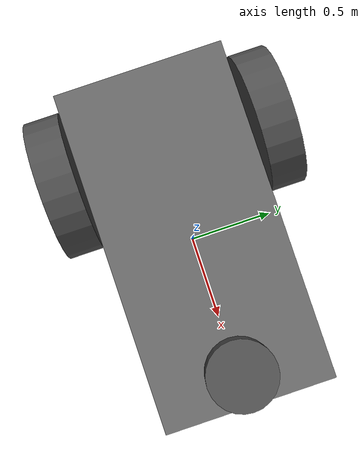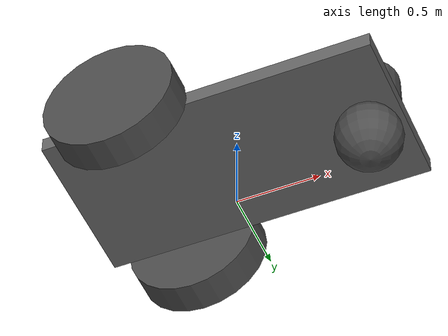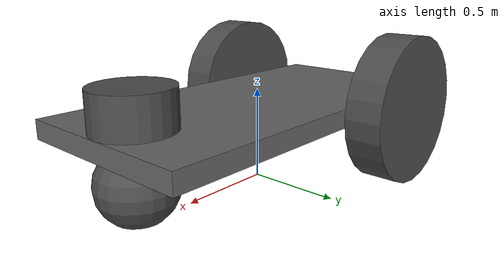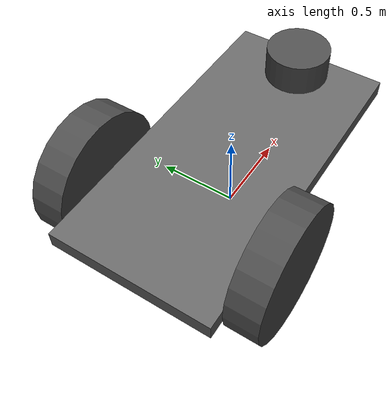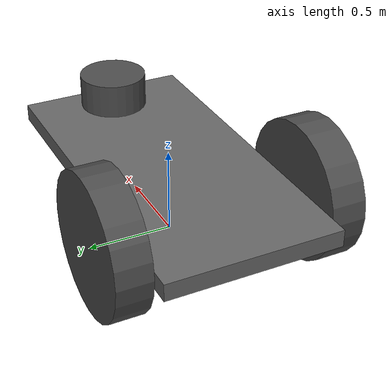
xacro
<?xml version="1.0" ?>
<robot name="mebot" xmlns:xacro="http://ros.org/wiki/xacro">

  <xacro:arg name="namespace" default=""/>
  <xacro:property name="namespace" value="$(arg namespace)"/>

  <!-- Init colour -->
  <material name="black">
      <color rgba="0.0 0.0 0.0 1.0"/>
  </material>

  <material name="dark">
    <color rgba="0.3 0.3 0.3 1.0"/>
  </material>

  <material name="light_black">
    <color rgba="0.4 0.4 0.4 1.0"/>
  </material>

  <material name="blue">
    <color rgba="0.0 0.0 0.8 1.0"/>
  </material>

  <material name="green">
    <color rgba="0.0 0.8 0.0 1.0"/>
  </material>

  <material name="grey">
    <color rgba="0.5 0.5 0.5 1.0"/>
  </material>

  <material name="orange">
    <color rgba="1.0 0.4235 0.0392 1.0"/>
  </material>

  <material name="brown">
    <color rgba="0.8706 0.8118 0.7647 1.0"/>
  </material>

  <material name="red">
    <color rgba="0.8 0.0 0.0 1.0"/>
  </material>

  <material name="white">
    <color rgba="1.0 1.0 1.0 1.0"/>
  </material>

  <link name="${namespace}base_footprint"/>

  <joint name="${namespace}base_to_base" type="fixed">
    <parent link="${namespace}base_footprint"/>
    <child link="${namespace}base_link" />
    <origin xyz="0 0 0.4" rpy="0 0 0"/>
  </joint>

  <link name="${namespace}base_link">
    <visual>
      <origin xyz="0 0 0.0" rpy="0 0 0"/>
      <geometry>
        <box size="2.0 1.0 0.1"/>
      </geometry>
      <material name="light_black"/>
    </visual>

    <collision>
      <geometry>
        <box size="2.0 1.0 0.1"/>
      </geometry>
    </collision>

    <inertial>
      <origin xyz="0 0 0" rpy="0 0 0"/>
      <mass value="1.14395"/>
      <inertia ixx="0.095329" ixy="0" ixz="0"
               iyy="0.381317" iyz="0"
               izz="0.476646" />
    </inertial>
  </link>

  <joint name="${namespace}wheel_left_joint" type="continuous">
    <parent link="${namespace}base_link"/>
    <child link="${namespace}wheel_left_link"/>
    <origin xyz="-0.5 0.6 0.0" rpy="-1.57 0 0"/> <!-- rotación de 90º sobre Y -->
    <axis xyz="0 0 1"/>
  </joint>

<link name="${namespace}wheel_left_link">
  <visual>
    <origin xyz="0 0 0" rpy="0 0 0"/> <!-- sin rotación adicional -->
    <geometry>
      <cylinder length="0.2" radius="0.4"/>
    </geometry>
    <material name="dark"/>
  </visual>

  <collision>
    <origin xyz="0 0 0" rpy="0 0 0"/>
    <geometry>
      <cylinder length="0.2" radius="0.4"/>
    </geometry>
  </collision>

  <inertial>
    <origin xyz="0 0 0"/>
    <mass value="1.0"/>
    <inertia ixx="0.043333" ixy="0.0" ixz="0.0"
             iyy="0.043333" iyz="0.0"
             izz="0.08"/>
  </inertial>
</link>

  <joint name="${namespace}wheel_right_joint" type="continuous">
    <parent link="${namespace}base_link"/>
    <child link="${namespace}wheel_right_link"/>
    <origin xyz="-0.5 -0.6 0.0" rpy="-1.57 0 0"/>
    <axis xyz="0 0 1"/>
  </joint>

  <link name="${namespace}wheel_right_link">
    <visual>
      <origin xyz="0 0 0" rpy="0 0 0"/>
      <geometry>
        <cylinder length="0.2" radius="0.4"/>
      </geometry>
      <material name="dark"/>
    </visual>

    <collision>
      <origin xyz="0 0 0" rpy="0 0 0"/>
      <geometry>
        <cylinder length="0.2" radius="0.4"/>
      </geometry>
    </collision>

    <inertial>
      <origin xyz="0 0 0" />
      <mass value="1.0" />
      <inertia ixx="043333" ixy="0.0" ixz="0.0"
               iyy="043333" iyz="0.0"
               izz="0.08" />
      </inertial>
  </link>

  <joint name="${namespace}caster_joint" type="fixed">
    <parent link="${namespace}base_link"/>
    <child link="${namespace}caster_link"/>
    <origin xyz="0.8 0 -0.2" rpy="0 0 0"/>
  </joint>

  <link name="${namespace}caster_link">
    <visual>
      <origin xyz="0 0 0.0" rpy="0 0 0"/>
      <geometry>
        <sphere radius="0.2"/>
      </geometry>
      <material name="dark"/>
    </visual>
    <collision>
      <origin xyz="0.8 0.0 -0.2" rpy="0 0 0"/>
      <geometry>
        <sphere radius="0.2"/>
      </geometry>
    </collision>

    <inertial>
      <origin xyz="0 0 0" />
      <mass value="0.01" />
      <inertia ixx="0.016" ixy="0.0" ixz="0.0"
               iyy="0.016" iyz="0.0"
               izz="0.016" />
    </inertial>
  </link>

  <joint name="${namespace}scan_joint" type="fixed">
    <parent link="${namespace}base_link"/>
    <child link="${namespace}base_scan"/>
    <origin xyz="0.8 0 0.15" rpy="0 0 0"/>
  </joint>

  <link name="${namespace}base_scan">
    <visual>
      <origin xyz="0 0 0.0" rpy="0 0 0"/>
      <geometry>
        <cylinder length="0.2" radius="0.2"/>
      </geometry>
      <material name="dark"/>
    </visual>

    <collision>
      <origin xyz="0.0 0 0.0" rpy="0 0 0"/>
      <geometry>
        <cylinder length="0.2" radius="0.2"/>
      </geometry>
    </collision>

    <inertial>
      <mass value="1.0" />
      <origin xyz="0 0 0" />
      <inertia ixx="0.043333" ixy="0.0" ixz="0.0"
               iyy="0.043333" iyz="0.0"
               izz="0.08" />
    </inertial>
  </link>

</robot>
